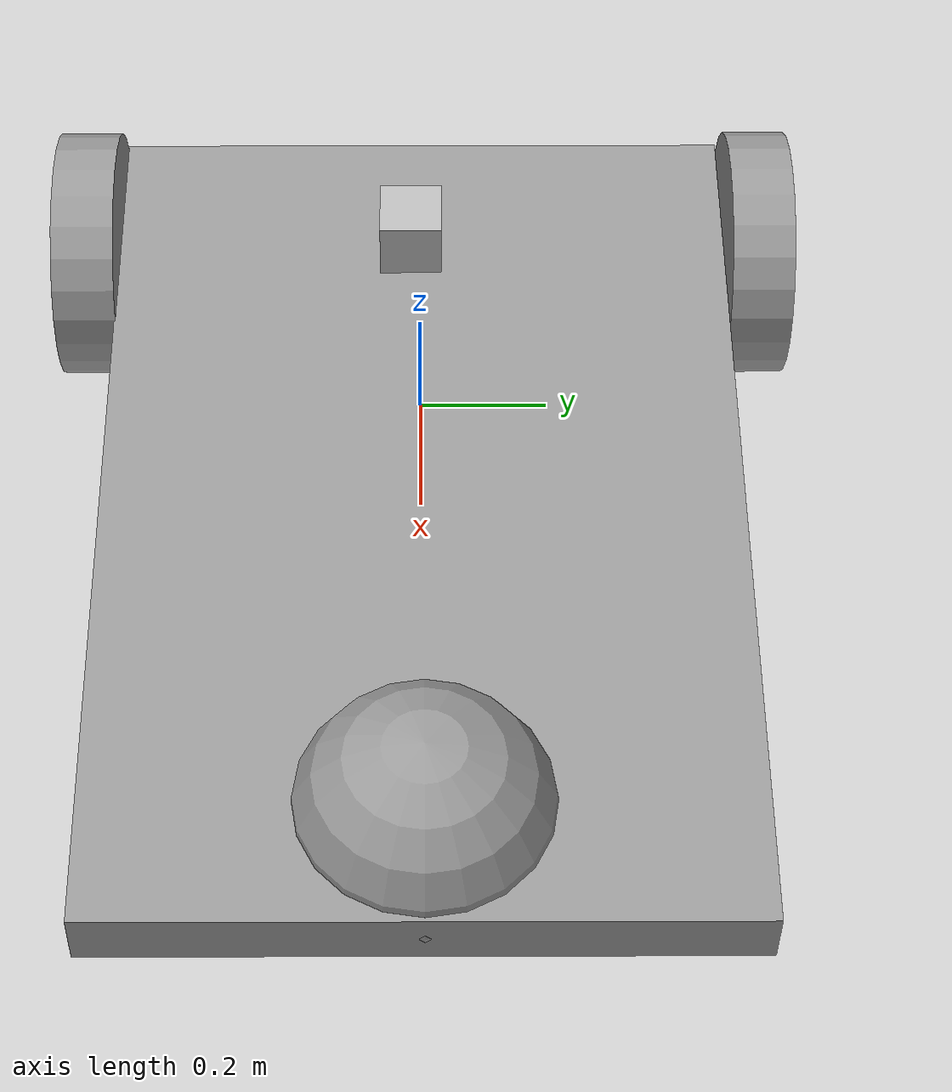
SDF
<?xml version='1.0'?>
<sdf version='1.6'>
  <model name='chassis_robot_with_camera'>
    <link name='link_0'>
      <pose frame=''>0.207166 0.002354 -0.014274 0 -0 0</pose>
      <inertial>
        <mass>1</mass>
        <inertia>
          <ixx>0.166667</ixx>
          <ixy>0</ixy>
          <ixz>0</ixz>
          <iyy>0.166667</iyy>
          <iyz>0</iyz>
          <izz>0.166667</izz>
        </inertia>
        <pose frame=''>0 0 0 0 -0 0</pose>
      </inertial>
      <gravity>1</gravity>
      <self_collide>0</self_collide>
      <kinematic>0</kinematic>
      <visual name='visual'>
        <pose frame=''>0 0 0 0 -0 0</pose>
        <geometry>
          <box>
            <size>1.5 1 0.1</size>
          </box>
        </geometry>
        <material>
          <lighting>1</lighting>
          <script>
            <uri>file://media/materials/scripts/gazebo.material</uri>
            <name>Gazebo/Grey</name>
          </script>
          <ambient>0.3 0.3 0.3 1</ambient>
          <diffuse>0.7 0.7 0.7 1</diffuse>
          <specular>0.01 0.01 0.01 1</specular>
          <emissive>0 0 0 1</emissive>
          <shader type='vertex'>
            <normal_map>__default__</normal_map>
          </shader>
        </material>
        <cast_shadows>1</cast_shadows>
        <transparency>0</transparency>
      </visual>
      <collision name='collision'>
        <laser_retro>0</laser_retro>
        <max_contacts>10</max_contacts>
        <pose frame=''>0 0 0 0 -0 0</pose>
        <geometry>
          <box>
            <size>1.5 1 0.1</size>
          </box>
        </geometry>
        <surface>
          <friction>
            <ode>
              <mu>1</mu>
              <mu2>1</mu2>
              <fdir1>0 0 0</fdir1>
              <slip1>0</slip1>
              <slip2>0</slip2>
            </ode>
            <torsional>
              <coefficient>1</coefficient>
              <patch_radius>0</patch_radius>
              <surface_radius>0</surface_radius>
              <use_patch_radius>1</use_patch_radius>
              <ode>
                <slip>0</slip>
              </ode>
            </torsional>
          </friction>
          <bounce>
            <restitution_coefficient>0</restitution_coefficient>
            <threshold>1e+06</threshold>
          </bounce>
          <contact>
            <collide_without_contact>0</collide_without_contact>
            <collide_without_contact_bitmask>1</collide_without_contact_bitmask>
            <collide_bitmask>1</collide_bitmask>
            <ode>
              <soft_cfm>0</soft_cfm>
              <soft_erp>0.2</soft_erp>
              <kp>1e+13</kp>
              <kd>1</kd>
              <max_vel>0.01</max_vel>
              <min_depth>0</min_depth>
            </ode>
            <bullet>
              <split_impulse>1</split_impulse>
              <split_impulse_penetration_threshold>-0.01</split_impulse_penetration_threshold>
              <soft_cfm>0</soft_cfm>
              <soft_erp>0.2</soft_erp>
              <kp>1e+13</kp>
              <kd>1</kd>
            </bullet>
          </contact>
        </surface>
      </collision>
    </link>
    <link name='link_1_clone_clone'>
      <pose frame=''>-0.341329 -0.545673 -0.014219 1.5707 -0 0</pose>
      <inertial>
        <mass>1</mass>
        <inertia>
          <ixx>0.145833</ixx>
          <ixy>0</ixy>
          <ixz>0</ixz>
          <iyy>0.145833</iyy>
          <iyz>0</iyz>
          <izz>0.125</izz>
        </inertia>
        <pose frame=''>0 0 0 0 -0 0</pose>
      </inertial>
      <self_collide>0</self_collide>
      <kinematic>0</kinematic>
      <gravity>1</gravity>
      <visual name='visual'>
        <pose frame=''>0 0 0 0 -0 0</pose>
        <geometry>
          <cylinder>
            <radius>0.2</radius>
            <length>0.1</length>
          </cylinder>
        </geometry>
        <material>
          <lighting>1</lighting>
          <script>
            <uri>file://media/materials/scripts/gazebo.material</uri>
            <name>Gazebo/Grey</name>
          </script>
          <ambient>0.3 0.3 0.3 1</ambient>
          <diffuse>0.7 0.7 0.7 1</diffuse>
          <specular>0.01 0.01 0.01 1</specular>
          <emissive>0 0 0 1</emissive>
          <shader type='vertex'>
            <normal_map>__default__</normal_map>
          </shader>
        </material>
        <cast_shadows>1</cast_shadows>
        <transparency>0</transparency>
      </visual>
      <collision name='collision'>
        <laser_retro>0</laser_retro>
        <max_contacts>10</max_contacts>
        <pose frame=''>0 0 0 0 -0 0</pose>
        <geometry>
          <cylinder>
            <radius>0.2</radius>
            <length>0.1</length>
          </cylinder>
        </geometry>
        <surface>
          <friction>
            <ode>
              <mu>1</mu>
              <mu2>1</mu2>
              <fdir1>0 0 0</fdir1>
              <slip1>0</slip1>
              <slip2>0</slip2>
            </ode>
            <torsional>
              <coefficient>1</coefficient>
              <patch_radius>0</patch_radius>
              <surface_radius>0</surface_radius>
              <use_patch_radius>1</use_patch_radius>
              <ode>
                <slip>0</slip>
              </ode>
            </torsional>
          </friction>
          <bounce>
            <restitution_coefficient>0</restitution_coefficient>
            <threshold>1e+06</threshold>
          </bounce>
          <contact>
            <collide_without_contact>0</collide_without_contact>
            <collide_without_contact_bitmask>1</collide_without_contact_bitmask>
            <collide_bitmask>1</collide_bitmask>
            <ode>
              <soft_cfm>0</soft_cfm>
              <soft_erp>0.2</soft_erp>
              <kp>1e+13</kp>
              <kd>1</kd>
              <max_vel>0.01</max_vel>
              <min_depth>0</min_depth>
            </ode>
            <bullet>
              <split_impulse>1</split_impulse>
              <split_impulse_penetration_threshold>-0.01</split_impulse_penetration_threshold>
              <soft_cfm>0</soft_cfm>
              <soft_erp>0.2</soft_erp>
              <kp>1e+13</kp>
              <kd>1</kd>
            </bullet>
          </contact>
        </surface>
      </collision>
    </link>
    <link name='link_1_clone_clone_clone'>
      <pose frame=''>-0.341329 0.554365 -0.014274 1.5707 -0 0</pose>
      <inertial>
        <mass>1</mass>
        <inertia>
          <ixx>0.145833</ixx>
          <ixy>0</ixy>
          <ixz>0</ixz>
          <iyy>0.145833</iyy>
          <iyz>0</iyz>
          <izz>0.125</izz>
        </inertia>
        <pose frame=''>0 0 0 0 -0 0</pose>
      </inertial>
      <self_collide>0</self_collide>
      <kinematic>0</kinematic>
      <visual name='visual'>
        <pose frame=''>0 0 0 0 -0 0</pose>
        <geometry>
          <cylinder>
            <radius>0.2</radius>
            <length>0.1</length>
          </cylinder>
        </geometry>
        <material>
          <lighting>1</lighting>
          <script>
            <uri>file://media/materials/scripts/gazebo.material</uri>
            <name>Gazebo/Grey</name>
          </script>
          <ambient>0.3 0.3 0.3 1</ambient>
          <diffuse>0.7 0.7 0.7 1</diffuse>
          <specular>0.01 0.01 0.01 1</specular>
          <emissive>0 0 0 1</emissive>
          <shader type='vertex'>
            <normal_map>__default__</normal_map>
          </shader>
        </material>
        <cast_shadows>1</cast_shadows>
        <transparency>0</transparency>
      </visual>
      <collision name='collision'>
        <laser_retro>0</laser_retro>
        <max_contacts>10</max_contacts>
        <pose frame=''>0 0 0 0 -0 0</pose>
        <geometry>
          <cylinder>
            <radius>0.2</radius>
            <length>0.1</length>
          </cylinder>
        </geometry>
        <surface>
          <friction>
            <ode>
              <mu>1</mu>
              <mu2>1</mu2>
              <fdir1>0 0 0</fdir1>
              <slip1>0</slip1>
              <slip2>0</slip2>
            </ode>
            <torsional>
              <coefficient>1</coefficient>
              <patch_radius>0</patch_radius>
              <surface_radius>0</surface_radius>
              <use_patch_radius>1</use_patch_radius>
              <ode>
                <slip>0</slip>
              </ode>
            </torsional>
          </friction>
          <bounce>
            <restitution_coefficient>0</restitution_coefficient>
            <threshold>1e+06</threshold>
          </bounce>
          <contact>
            <collide_without_contact>0</collide_without_contact>
            <collide_without_contact_bitmask>1</collide_without_contact_bitmask>
            <collide_bitmask>1</collide_bitmask>
            <ode>
              <soft_cfm>0</soft_cfm>
              <soft_erp>0.2</soft_erp>
              <kp>1e+13</kp>
              <kd>1</kd>
              <max_vel>0.01</max_vel>
              <min_depth>0</min_depth>
            </ode>
            <bullet>
              <split_impulse>1</split_impulse>
              <split_impulse_penetration_threshold>-0.01</split_impulse_penetration_threshold>
              <soft_cfm>0</soft_cfm>
              <soft_erp>0.2</soft_erp>
              <kp>1e+13</kp>
              <kd>1</kd>
            </bullet>
          </contact>
        </surface>
      </collision>
    </link>
    <link name='link_2'>
      <pose frame=''>0.758671 0.004346 -0.014274 0 -0 0</pose>
      <inertial>
        <mass>1</mass>
        <inertia>
          <ixx>0.1</ixx>
          <ixy>0</ixy>
          <ixz>0</ixz>
          <iyy>0.1</iyy>
          <iyz>0</iyz>
          <izz>0.1</izz>
        </inertia>
        <pose frame=''>0 0 0 0 -0 0</pose>
      </inertial>
      <gravity>1</gravity>
      <self_collide>0</self_collide>
      <kinematic>0</kinematic>
      <visual name='visual'>
        <pose frame=''>0 0 0 0 -0 0</pose>
        <geometry>
          <sphere>
            <radius>0.2</radius>
          </sphere>
        </geometry>
        <material>
          <lighting>1</lighting>
          <script>
            <uri>file://media/materials/scripts/gazebo.material</uri>
            <name>Gazebo/Grey</name>
          </script>
          <ambient>0.3 0.3 0.3 1</ambient>
          <diffuse>0.7 0.7 0.7 1</diffuse>
          <specular>0.01 0.01 0.01 1</specular>
          <emissive>0 0 0 1</emissive>
          <shader type='vertex'>
            <normal_map>__default__</normal_map>
          </shader>
        </material>
        <cast_shadows>1</cast_shadows>
        <transparency>0</transparency>
      </visual>
      <collision name='collision'>
        <laser_retro>0</laser_retro>
        <max_contacts>10</max_contacts>
        <pose frame=''>0 0 0 0 -0 0</pose>
        <geometry>
          <sphere>
            <radius>0.2</radius>
          </sphere>
        </geometry>
        <surface>
          <friction>
            <ode>
              <mu>1</mu>
              <mu2>1</mu2>
              <fdir1>0 0 0</fdir1>
              <slip1>0</slip1>
              <slip2>0</slip2>
            </ode>
            <torsional>
              <coefficient>1</coefficient>
              <patch_radius>0</patch_radius>
              <surface_radius>0</surface_radius>
              <use_patch_radius>1</use_patch_radius>
              <ode>
                <slip>0</slip>
              </ode>
            </torsional>
          </friction>
          <bounce>
            <restitution_coefficient>0</restitution_coefficient>
            <threshold>1e+06</threshold>
          </bounce>
          <contact>
            <collide_without_contact>0</collide_without_contact>
            <collide_without_contact_bitmask>1</collide_without_contact_bitmask>
            <collide_bitmask>1</collide_bitmask>
            <ode>
              <soft_cfm>0</soft_cfm>
              <soft_erp>0.2</soft_erp>
              <kp>1e+13</kp>
              <kd>1</kd>
              <max_vel>0.01</max_vel>
              <min_depth>0</min_depth>
            </ode>
            <bullet>
              <split_impulse>1</split_impulse>
              <split_impulse_penetration_threshold>-0.01</split_impulse_penetration_threshold>
              <soft_cfm>0</soft_cfm>
              <soft_erp>0.2</soft_erp>
              <kp>1e+13</kp>
              <kd>1</kd>
            </bullet>
          </contact>
        </surface>
      </collision>
    </link>
    <model name='depth_camera'>
      <link name='link'>
        <pose frame=''>0 0 0.05 0 -0 0</pose>
        <inertial>
          <mass>0.1</mass>
          <inertia>
            <ixx>0.000166667</ixx>
            <iyy>0.000166667</iyy>
            <izz>0.000166667</izz>
            <ixy>0</ixy>
            <ixz>0</ixz>
            <iyz>0</iyz>
          </inertia>
        </inertial>
        <collision name='collision'>
          <geometry>
            <box>
              <size>0.1 0.1 0.1</size>
            </box>
          </geometry>
        </collision>
        <visual name='visual'>
          <geometry>
            <box>
              <size>0.1 0.1 0.1</size>
            </box>
          </geometry>
        </visual>
        <sensor name='camera' type='depth'>
          <camera name='__default__'>
            <horizontal_fov>1.047</horizontal_fov>
            <image>
              <width>320</width>
              <height>240</height>
            </image>
            <clip>
              <near>0.1</near>
              <far>100</far>
            </clip>
          </camera>
          <always_on>1</always_on>
          <update_rate>30</update_rate>
          <visualize>1</visualize>
        </sensor>
      </link>
      <pose frame=''>-0.283178 -0.015391 0.05704 0 -0 0</pose>
    </model>
    <joint name='link_0_JOINT_3' type='revolute'>
      <parent>link_0</parent>
      <child>link_1_clone_clone</child>
      <pose frame=''>0 0 0 0 -0 0</pose>
      <axis>
        <xyz>0 0 1</xyz>
        <use_parent_model_frame>0</use_parent_model_frame>
        <limit>
          <lower>-1.79769e+308</lower>
          <upper>1.79769e+308</upper>
          <effort>-1</effort>
          <velocity>-1</velocity>
        </limit>
        <dynamics>
          <spring_reference>0</spring_reference>
          <spring_stiffness>0</spring_stiffness>
          <damping>0</damping>
        </dynamics>
      </axis>
      <physics>
        <ode>
          <limit>
            <cfm>0</cfm>
            <erp>0.2</erp>
          </limit>
          <suspension>
            <cfm>0</cfm>
            <erp>0.2</erp>
          </suspension>
        </ode>
      </physics>
    </joint>
    <joint name='link_0_JOINT_4' type='revolute'>
      <parent>link_0</parent>
      <child>link_1_clone_clone_clone</child>
      <pose frame=''>0 0 0 0 -0 0</pose>
      <axis>
        <xyz>0 0 1</xyz>
        <use_parent_model_frame>0</use_parent_model_frame>
        <limit>
          <lower>-1.79769e+308</lower>
          <upper>1.79769e+308</upper>
          <effort>-1</effort>
          <velocity>-1</velocity>
        </limit>
        <dynamics>
          <spring_reference>0</spring_reference>
          <spring_stiffness>0</spring_stiffness>
          <damping>0</damping>
        </dynamics>
      </axis>
      <physics>
        <ode>
          <limit>
            <cfm>0</cfm>
            <erp>0.2</erp>
          </limit>
          <suspension>
            <cfm>0</cfm>
            <erp>0.2</erp>
          </suspension>
        </ode>
      </physics>
    </joint>
    <joint name='link_0_JOINT_5' type='ball'>
      <parent>link_0</parent>
      <child>link_2</child>
      <pose frame=''>0 0 0 0 -0 0</pose>
      <physics>
        <ode>
          <limit>
            <cfm>0</cfm>
            <erp>0.2</erp>
          </limit>
          <suspension>
            <cfm>0</cfm>
            <erp>0.2</erp>
          </suspension>
        </ode>
      </physics>
    </joint>
    <joint name='link_0_JOINT_7' type='fixed'>
      <parent>link_0</parent>
      <child>depth_camera::link</child>
      <pose frame=''>0 0 0 0 -0 0</pose>
      <physics>
        <ode>
          <limit>
            <cfm>0</cfm>
            <erp>0.2</erp>
          </limit>
          <suspension>
            <cfm>0</cfm>
            <erp>0.2</erp>
          </suspension>
        </ode>
      </physics>
    </joint>
    <static>0</static>
    <allow_auto_disable>1</allow_auto_disable>
    <plugin name='follower' filename='libFollowerPlugin.so'/>
  </model>
</sdf>
